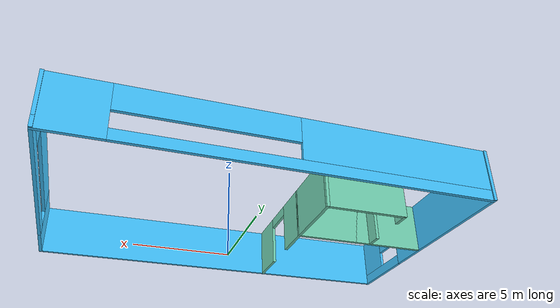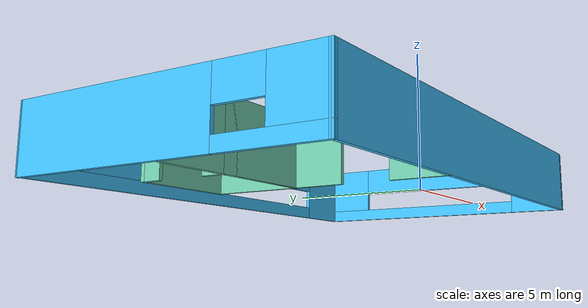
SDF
<?xml version='1.0'?>
<sdf version='1.6'>
  <model name='building'>
    <pose frame=''>0.028908 3.57362 0 0 -0 0</pose>
    <link name='Wall_0'>
      <collision name='Wall_0_Collision'>
        <geometry>
          <box>
            <size>19.2418 0.15 2.5</size>
          </box>
        </geometry>
        <pose frame=''>0 0 1.25 0 -0 0</pose>
      </collision>
      <visual name='Wall_0_Visual'>
        <pose frame=''>0 0 1.25 0 -0 0</pose>
        <geometry>
          <box>
            <size>19.2418 0.15 2.5</size>
          </box>
        </geometry>
        <material>
          <script>
            <uri>file://media/materials/scripts/gazebo.material</uri>
            <name>Gazebo/Grey</name>
          </script>
          <ambient>0.25098 0.74902 0.976471 1</ambient>
        </material>
        <meta>
          <layer>0</layer>
        </meta>
      </visual>
      <pose frame=''>0.000298 -5.87005 0 0 -0 -0.002676</pose>
    </link>
    <link name='Wall_1'>
      <pose frame=''>9.52291 0 0 0 -0 1.57474</pose>
      <visual name='Wall_1_Visual_0'>
        <pose frame=''>-4.83107 0 1.25 0 -0 0</pose>
        <geometry>
          <box>
            <size>2.27913 0.15 2.5</size>
          </box>
        </geometry>
        <material>
          <script>
            <uri>file://media/materials/scripts/gazebo.material</uri>
            <name>Gazebo/Grey</name>
          </script>
          <ambient>0.25098 0.74902 0.976471 1</ambient>
        </material>
        <meta>
          <layer>0</layer>
        </meta>
      </visual>
      <collision name='Wall_1_Collision_0'>
        <geometry>
          <box>
            <size>2.27913 0.15 2.5</size>
          </box>
        </geometry>
        <pose frame=''>-4.83107 0 1.25 0 -0 0</pose>
      </collision>
      <visual name='Wall_1_Visual_1'>
        <pose frame=''>1.13957 0 0.25 0 -0 0</pose>
        <geometry>
          <box>
            <size>9.66215 0.15 0.5</size>
          </box>
        </geometry>
        <material>
          <script>
            <uri>file://media/materials/scripts/gazebo.material</uri>
            <name>Gazebo/Grey</name>
          </script>
          <ambient>0.25098 0.74902 0.976471 1</ambient>
        </material>
        <meta>
          <layer>0</layer>
        </meta>
      </visual>
      <collision name='Wall_1_Collision_1'>
        <geometry>
          <box>
            <size>9.66215 0.15 0.5</size>
          </box>
        </geometry>
        <pose frame=''>1.13957 0 0.25 0 -0 0</pose>
      </collision>
      <visual name='Wall_1_Visual_2'>
        <pose frame=''>4.88957 0 1.5 0 -0 0</pose>
        <geometry>
          <box>
            <size>2.16215 0.15 2</size>
          </box>
        </geometry>
        <material>
          <script>
            <uri>file://media/materials/scripts/gazebo.material</uri>
            <name>Gazebo/Grey</name>
          </script>
          <ambient>0.25098 0.74902 0.976471 1</ambient>
        </material>
        <meta>
          <layer>0</layer>
        </meta>
      </visual>
      <collision name='Wall_1_Collision_2'>
        <geometry>
          <box>
            <size>2.16215 0.15 2</size>
          </box>
        </geometry>
        <pose frame=''>4.88957 0 1.5 0 -0 0</pose>
      </collision>
      <visual name='Wall_1_Visual_3'>
        <pose frame=''>0.058493 0 1.9 0 -0 0</pose>
        <geometry>
          <box>
            <size>7.5 0.15 1.2</size>
          </box>
        </geometry>
        <material>
          <script>
            <uri>file://media/materials/scripts/gazebo.material</uri>
            <name>Gazebo/Grey</name>
          </script>
          <ambient>0.25098 0.74902 0.976471 1</ambient>
        </material>
        <meta>
          <layer>0</layer>
        </meta>
      </visual>
      <collision name='Wall_1_Collision_3'>
        <geometry>
          <box>
            <size>7.5 0.15 1.2</size>
          </box>
        </geometry>
        <pose frame=''>0.058493 0 1.9 0 -0 0</pose>
      </collision>
    </link>
    <link name='Wall_2'>
      <pose frame=''>0.046822 5.82581 0 0 -0 -3.13913</pose>
      <visual name='Wall_2_Visual_0'>
        <pose frame=''>-8.21872 0 1.25 0 -0 0</pose>
        <geometry>
          <box>
            <size>2.61826 0.15 2.5</size>
          </box>
        </geometry>
        <material>
          <script>
            <uri>file://media/materials/scripts/gazebo.material</uri>
            <name>Gazebo/Grey</name>
          </script>
          <ambient>0.25098 0.74902 0.976471 1</ambient>
        </material>
        <meta>
          <layer>0</layer>
        </meta>
      </visual>
      <collision name='Wall_2_Collision_0'>
        <geometry>
          <box>
            <size>2.61826 0.15 2.5</size>
          </box>
        </geometry>
        <pose frame=''>-8.21872 0 1.25 0 -0 0</pose>
      </collision>
      <visual name='Wall_2_Visual_1'>
        <pose frame=''>1.30913 0 0.25 0 -0 0</pose>
        <geometry>
          <box>
            <size>16.4374 0.15 0.5</size>
          </box>
        </geometry>
        <material>
          <script>
            <uri>file://media/materials/scripts/gazebo.material</uri>
            <name>Gazebo/Grey</name>
          </script>
          <ambient>0.25098 0.74902 0.976471 1</ambient>
        </material>
        <meta>
          <layer>0</layer>
        </meta>
      </visual>
      <collision name='Wall_2_Collision_1'>
        <geometry>
          <box>
            <size>16.4374 0.15 0.5</size>
          </box>
        </geometry>
        <pose frame=''>1.30913 0 0.25 0 -0 0</pose>
      </collision>
      <visual name='Wall_2_Visual_2'>
        <pose frame=''>5.05913 0 1.5 0 -0 0</pose>
        <geometry>
          <box>
            <size>8.93744 0.15 2</size>
          </box>
        </geometry>
        <material>
          <script>
            <uri>file://media/materials/scripts/gazebo.material</uri>
            <name>Gazebo/Grey</name>
          </script>
          <ambient>0.25098 0.74902 0.976471 1</ambient>
        </material>
        <meta>
          <layer>0</layer>
        </meta>
      </visual>
      <collision name='Wall_2_Collision_2'>
        <geometry>
          <box>
            <size>8.93744 0.15 2</size>
          </box>
        </geometry>
        <pose frame=''>5.05913 0 1.5 0 -0 0</pose>
      </collision>
      <visual name='Wall_2_Visual_3'>
        <pose frame=''>-3.15959 0 1.9 0 -0 0</pose>
        <geometry>
          <box>
            <size>7.5 0.15 1.2</size>
          </box>
        </geometry>
        <material>
          <script>
            <uri>file://media/materials/scripts/gazebo.material</uri>
            <name>Gazebo/Grey</name>
          </script>
          <ambient>0.25098 0.74902 0.976471 1</ambient>
        </material>
        <meta>
          <layer>0</layer>
        </meta>
      </visual>
      <collision name='Wall_2_Collision_3'>
        <geometry>
          <box>
            <size>7.5 0.15 1.2</size>
          </box>
        </geometry>
        <pose frame=''>-3.15959 0 1.9 0 -0 0</pose>
      </collision>
    </link>
    <link name='Wall_3'>
      <pose frame=''>-9.47579 0.002281 0 0 -0 -1.58273</pose>
      <visual name='Wall_3_Visual_0'>
        <pose frame=''>-1.90879 0 1.25 0 -0 0</pose>
        <geometry>
          <box>
            <size>8.02683 0.15 2.5</size>
          </box>
        </geometry>
        <material>
          <script>
            <uri>file://media/materials/scripts/gazebo.material</uri>
            <name>Gazebo/Grey</name>
          </script>
          <ambient>0.25098 0.74902 0.976471 1</ambient>
        </material>
        <meta>
          <layer>0</layer>
        </meta>
      </visual>
      <collision name='Wall_3_Collision_0'>
        <geometry>
          <box>
            <size>8.02683 0.15 2.5</size>
          </box>
        </geometry>
        <pose frame=''>-1.90879 0 1.25 0 -0 0</pose>
      </collision>
      <visual name='Wall_3_Visual_1'>
        <pose frame=''>4.01341 0 0.25 0 -0 0</pose>
        <geometry>
          <box>
            <size>3.81758 0.15 0.5</size>
          </box>
        </geometry>
        <material>
          <script>
            <uri>file://media/materials/scripts/gazebo.material</uri>
            <name>Gazebo/Grey</name>
          </script>
          <ambient>0.25098 0.74902 0.976471 1</ambient>
        </material>
        <meta>
          <layer>0</layer>
        </meta>
      </visual>
      <collision name='Wall_3_Collision_1'>
        <geometry>
          <box>
            <size>3.81758 0.15 0.5</size>
          </box>
        </geometry>
        <pose frame=''>4.01341 0 0.25 0 -0 0</pose>
      </collision>
      <visual name='Wall_3_Visual_2'>
        <pose frame=''>4.91341 0 1.5 0 -0 0</pose>
        <geometry>
          <box>
            <size>2.01758 0.15 2</size>
          </box>
        </geometry>
        <material>
          <script>
            <uri>file://media/materials/scripts/gazebo.material</uri>
            <name>Gazebo/Grey</name>
          </script>
          <ambient>0.25098 0.74902 0.976471 1</ambient>
        </material>
        <meta>
          <layer>0</layer>
        </meta>
      </visual>
      <collision name='Wall_3_Collision_2'>
        <geometry>
          <box>
            <size>2.01758 0.15 2</size>
          </box>
        </geometry>
        <pose frame=''>4.91341 0 1.5 0 -0 0</pose>
      </collision>
      <visual name='Wall_3_Visual_3'>
        <pose frame=''>3.00462 0 1.9 0 -0 0</pose>
        <geometry>
          <box>
            <size>1.8 0.15 1.2</size>
          </box>
        </geometry>
        <material>
          <script>
            <uri>file://media/materials/scripts/gazebo.material</uri>
            <name>Gazebo/Grey</name>
          </script>
          <ambient>0.25098 0.74902 0.976471 1</ambient>
        </material>
        <meta>
          <layer>0</layer>
        </meta>
      </visual>
      <collision name='Wall_3_Collision_3'>
        <geometry>
          <box>
            <size>1.8 0.15 1.2</size>
          </box>
        </geometry>
        <pose frame=''>3.00462 0 1.9 0 -0 0</pose>
      </collision>
    </link>
    <link name='Wall_5'>
      <pose frame=''>-2.75308 -1.29907 0 0 -0 1.5708</pose>
      <visual name='Wall_5_Visual_0'>
        <pose frame=''>-3.56363 0 1.25 0 -0 0</pose>
        <geometry>
          <box>
            <size>2.12274 0.15 2.5</size>
          </box>
        </geometry>
        <material>
          <script>
            <uri>file://media/materials/scripts/gazebo.material</uri>
            <name>Gazebo/Grey</name>
          </script>
          <ambient>0.435294 0.796078 0.67451 1</ambient>
        </material>
        <meta>
          <layer>0</layer>
        </meta>
      </visual>
      <collision name='Wall_5_Collision_0'>
        <geometry>
          <box>
            <size>2.12274 0.15 2.5</size>
          </box>
        </geometry>
        <pose frame=''>-3.56363 0 1.25 0 -0 0</pose>
      </collision>
      <visual name='Wall_5_Visual_1'>
        <pose frame=''>1.96137 0 1.25 0 -0 0</pose>
        <geometry>
          <box>
            <size>5.32726 0.15 2.5</size>
          </box>
        </geometry>
        <material>
          <script>
            <uri>file://media/materials/scripts/gazebo.material</uri>
            <name>Gazebo/Grey</name>
          </script>
          <ambient>0.435294 0.796078 0.67451 1</ambient>
        </material>
        <meta>
          <layer>0</layer>
        </meta>
      </visual>
      <collision name='Wall_5_Collision_1'>
        <geometry>
          <box>
            <size>5.32726 0.15 2.5</size>
          </box>
        </geometry>
        <pose frame=''>1.96137 0 1.25 0 -0 0</pose>
      </collision>
      <visual name='Wall_5_Visual_2'>
        <pose frame=''>-1.60226 0 2.25 0 -0 0</pose>
        <geometry>
          <box>
            <size>1.8 0.15 0.5</size>
          </box>
        </geometry>
        <material>
          <script>
            <uri>file://media/materials/scripts/gazebo.material</uri>
            <name>Gazebo/Grey</name>
          </script>
          <ambient>0.435294 0.796078 0.67451 1</ambient>
        </material>
        <meta>
          <layer>0</layer>
        </meta>
      </visual>
      <collision name='Wall_5_Collision_2'>
        <geometry>
          <box>
            <size>1.8 0.15 0.5</size>
          </box>
        </geometry>
        <pose frame=''>-1.60226 0 2.25 0 -0 0</pose>
      </collision>
    </link>
    <link name='Wall_6'>
      <collision name='Wall_6_Collision'>
        <geometry>
          <box>
            <size>4 0.15 2.5</size>
          </box>
        </geometry>
        <pose frame=''>0 0 1.25 0 -0 0</pose>
      </collision>
      <visual name='Wall_6_Visual'>
        <pose frame=''>0 0 1.25 0 -0 0</pose>
        <geometry>
          <box>
            <size>4 0.15 2.5</size>
          </box>
        </geometry>
        <material>
          <script>
            <uri>file://media/materials/scripts/gazebo.material</uri>
            <name>Gazebo/Grey</name>
          </script>
          <ambient>0.435294 0.796078 0.67451 1</ambient>
        </material>
        <meta>
          <layer>0</layer>
        </meta>
      </visual>
      <pose frame=''>-4.67808 3.25093 0 0 -0 3.14159</pose>
    </link>
    <link name='Wall_7'>
      <pose frame=''>-6.60308 1.57593 0 0 -0 -1.5708</pose>
      <visual name='Wall_7_Visual_0'>
        <pose frame=''>-1.34214 0 1.25 0 -0 0</pose>
        <geometry>
          <box>
            <size>0.815728 0.15 2.5</size>
          </box>
        </geometry>
        <material>
          <script>
            <uri>file://media/materials/scripts/gazebo.material</uri>
            <name>Gazebo/Grey</name>
          </script>
          <ambient>0.435294 0.796078 0.67451 1</ambient>
        </material>
        <meta>
          <layer>0</layer>
        </meta>
      </visual>
      <collision name='Wall_7_Collision_0'>
        <geometry>
          <box>
            <size>0.815728 0.15 2.5</size>
          </box>
        </geometry>
        <pose frame=''>-1.34214 0 1.25 0 -0 0</pose>
      </collision>
      <visual name='Wall_7_Visual_1'>
        <pose frame=''>1.30786 0 1.25 0 -0 0</pose>
        <geometry>
          <box>
            <size>0.884272 0.15 2.5</size>
          </box>
        </geometry>
        <material>
          <script>
            <uri>file://media/materials/scripts/gazebo.material</uri>
            <name>Gazebo/Grey</name>
          </script>
          <ambient>0.435294 0.796078 0.67451 1</ambient>
        </material>
        <meta>
          <layer>0</layer>
        </meta>
      </visual>
      <collision name='Wall_7_Collision_1'>
        <geometry>
          <box>
            <size>0.884272 0.15 2.5</size>
          </box>
        </geometry>
        <pose frame=''>1.30786 0 1.25 0 -0 0</pose>
      </collision>
      <visual name='Wall_7_Visual_2'>
        <pose frame=''>-0.034272 0 2.25 0 -0 0</pose>
        <geometry>
          <box>
            <size>1.8 0.15 0.5</size>
          </box>
        </geometry>
        <material>
          <script>
            <uri>file://media/materials/scripts/gazebo.material</uri>
            <name>Gazebo/Grey</name>
          </script>
          <ambient>0.435294 0.796078 0.67451 1</ambient>
        </material>
        <meta>
          <layer>0</layer>
        </meta>
      </visual>
      <collision name='Wall_7_Collision_2'>
        <geometry>
          <box>
            <size>1.8 0.15 0.5</size>
          </box>
        </geometry>
        <pose frame=''>-0.034272 0 2.25 0 -0 0</pose>
      </collision>
    </link>
    <link name='Wall_8'>
      <collision name='Wall_8_Collision'>
        <geometry>
          <box>
            <size>4 0.15 2.5</size>
          </box>
        </geometry>
        <pose frame=''>0 0 1.25 0 -0 0</pose>
      </collision>
      <visual name='Wall_8_Visual'>
        <pose frame=''>0 0 1.25 0 -0 0</pose>
        <geometry>
          <box>
            <size>4 0.15 2.5</size>
          </box>
        </geometry>
        <material>
          <script>
            <uri>file://media/materials/scripts/gazebo.material</uri>
            <name>Gazebo/Grey</name>
          </script>
          <ambient>0.435294 0.796078 0.67451 1</ambient>
        </material>
        <meta>
          <layer>0</layer>
        </meta>
      </visual>
      <pose frame=''>-4.67808 -0.099068 0 0 -0 0</pose>
    </link>
    <link name='Wall_9'>
      <collision name='Wall_9_Collision'>
        <geometry>
          <box>
            <size>6.75 0.15 2.5</size>
          </box>
        </geometry>
        <pose frame=''>0 0 1.25 0 -0 0</pose>
      </collision>
      <visual name='Wall_9_Visual'>
        <pose frame=''>0 0 1.25 0 -0 0</pose>
        <geometry>
          <box>
            <size>6.75 0.15 2.5</size>
          </box>
        </geometry>
        <material>
          <script>
            <uri>file://media/materials/scripts/gazebo.material</uri>
            <name>Gazebo/Grey</name>
          </script>
          <ambient>0.435294 0.796078 0.67451 1</ambient>
        </material>
        <meta>
          <layer>0</layer>
        </meta>
      </visual>
      <pose frame=''>-6.05308 -0.099068 0 0 -0 3.14159</pose>
    </link>
    <static>1</static>
  </model>
</sdf>
